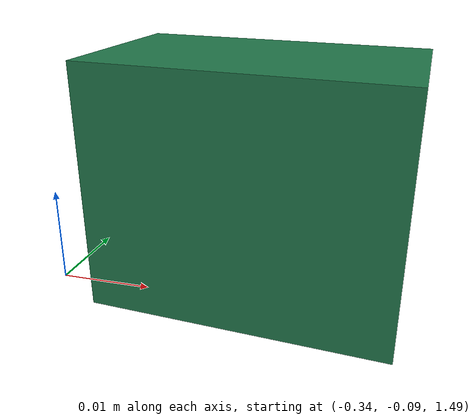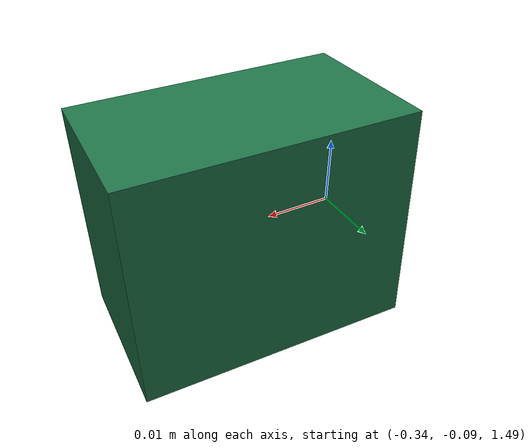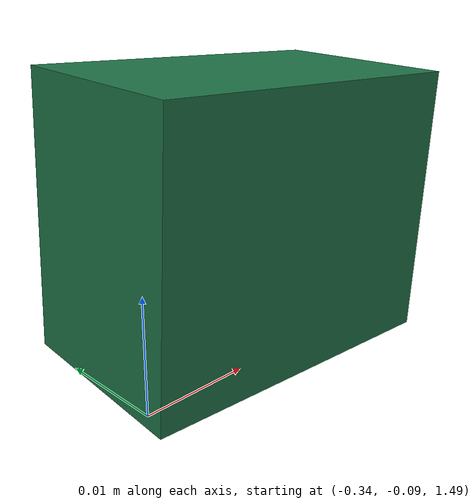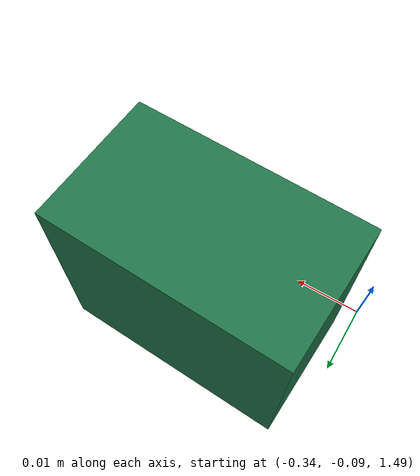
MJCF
<mujoco model="rj45_breakout_v8">
  <compiler angle="radian" coordinate="local"/>

  <asset>
    <material name="rj45_breakout" rgba="0.12 0.45 0.28 1" specular="0.3" shininess="0.35"/>
  </asset>

  <worldbody>
    <!--
      Air spawn near other free bodies.
      Half-extents from ALIGN.txt: 0.017 × 0.009975 × 0.014 m
      → full ≈ 34.00 × 19.95 × 28.00 mm.
    -->
    <body name="rj45_breakout_v8" pos="-0.32 -0.08 1.50" euler="0.04 0.02 -0.05">
      <freejoint name="rj45_breakout_v8_free"/>
      <!-- ASSUMPTION mass 0.0072 kg; diaginertia = solid-box about COM from AABB. -->
      <inertial pos="0 0 0" mass="0.0072" diaginertia="7.092015e-7 1.164000e-6 9.324015e-7"/>
      <geom name="rj45_breakout_v8_box" type="box" size="0.017 0.009975 0.014"
            material="rj45_breakout" priority="1"
            solref="0.012 0.25" solimp="0.9 0.95 0.001 0.5 2"/>
    </body>
  </worldbody>
</mujoco>
